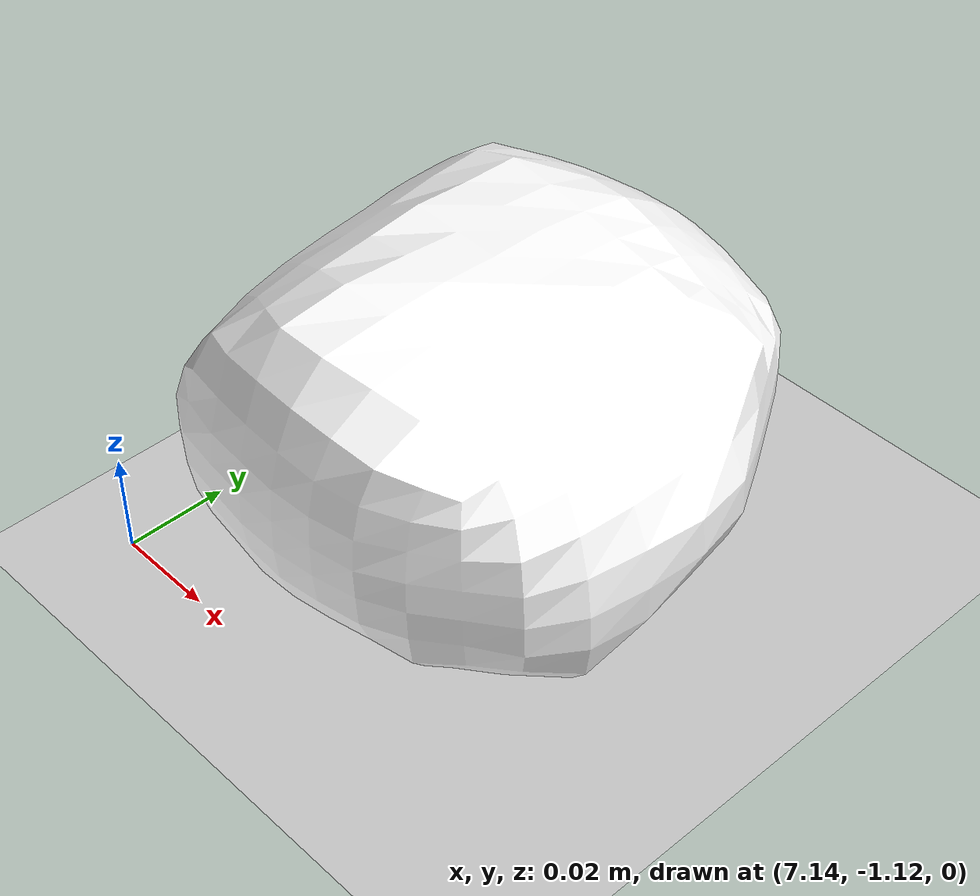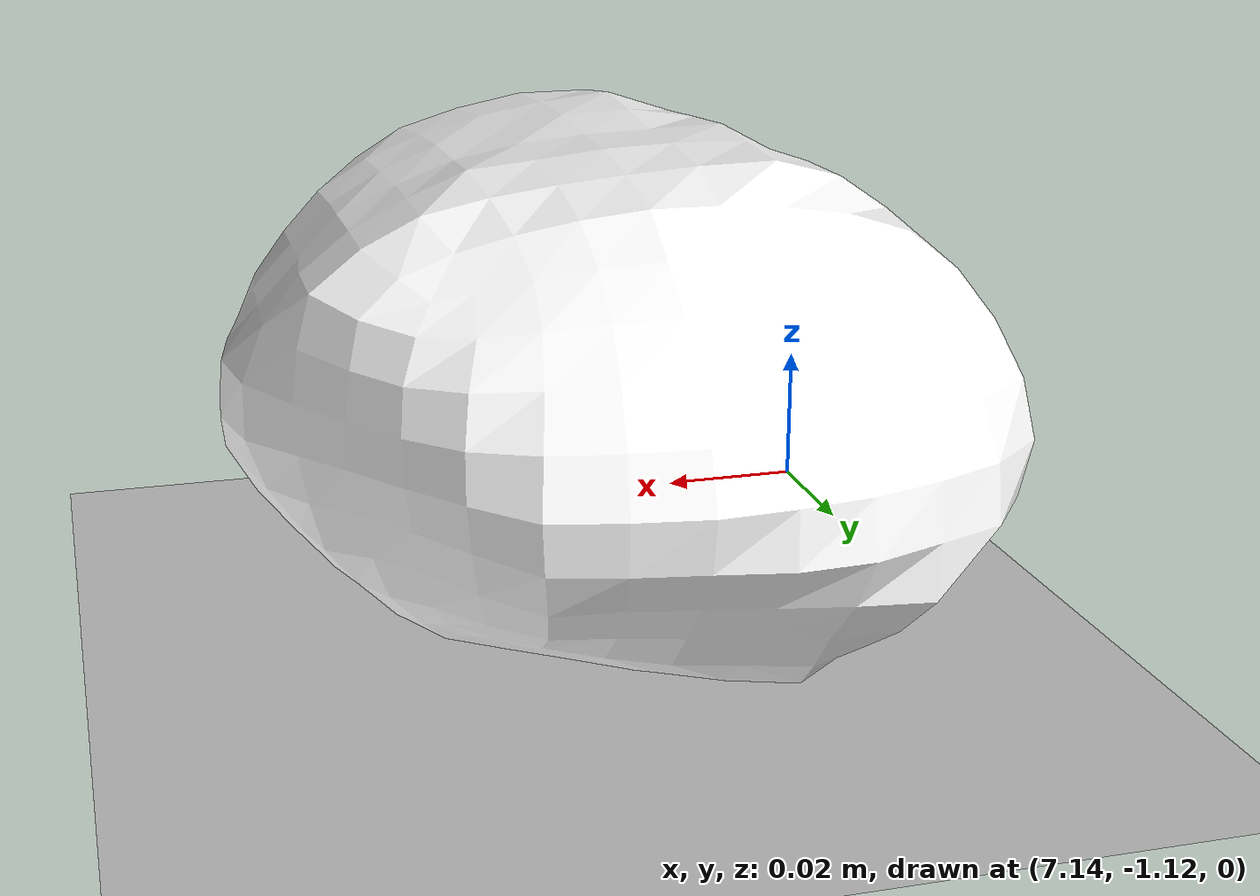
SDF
<sdf version="1.7">
 <world name="default">
  <model name="ground_plane">
   <static>1</static>
   <link name="link">
    <collision name="collision">
     <geometry><plane><normal>0 0 1</normal><size>100 100</size></plane></geometry>
     <surface><friction><ode><mu>100</mu><mu2>50</mu2></ode></friction></surface>
    </collision>
    <visual name="visual">
     <cast_shadows>0</cast_shadows>
     <geometry><plane><normal>0 0 1</normal><size>100 100</size></plane></geometry>
     <material>
      <script><uri>file://media/materials/scripts/gazebo.material</uri><name>Gazebo/Grey</name></script>
     </material>
    </visual>
   </link>
  </model>
  <model name="my_rock02_clone_5_clone_3">
   <link name="link">
    <inertial>
     <mass>0.3</mass>
     <inertia><ixx>1</ixx><ixy>0</ixy><ixz>0</ixz><iyy>1</iyy><iyz>0</iyz><izz>1</izz></inertia>
    </inertial>
    <velocity_decay><linear>0</linear><angular>0</angular></velocity_decay>
    <visual name="visual">
     <pose>0 0 0.031 0 -0 0</pose>
     <geometry><mesh><uri>model://my_rock02/meshes/model.dae</uri><scale>0.06 0.06 0.06</scale></mesh></geometry>
     <material>
      <script>
       <uri>model://my_rock02/materials/scripts</uri>
       <uri>model://my_rock02/materials/textures</uri>
       <name>myrock/Diffuse</name>
      </script>
      <shader type="pixel"><normal_map>__default__</normal_map></shader>
      <ambient>1 1 1 1</ambient>
      <diffuse>1 1 1 1</diffuse>
      <specular>0 0 0 1</specular>
      <emissive>0 0 0 1</emissive>
     </material>
    </visual>
    <collision name="collision">
     <pose>-0 0 0.03 0 -0 0</pose>
     <geometry>
      <mesh>
       <uri>/home/roboworks/CIRE2022/rocks_models/my_rock02/meshes/model.dae</uri>
       <scale>0.06 0.06 0.06</scale>
      </mesh>
     </geometry>
     <surface>
      <friction>
       <ode><mu>1</mu><mu2>1</mu2><fdir1>0 0 0</fdir1><slip1>0</slip1><slip2>0</slip2></ode>
       <torsional>
        <coefficient>1</coefficient>
        <patch_radius>0</patch_radius>
        <surface_radius>0</surface_radius>
        <use_patch_radius>1</use_patch_radius>
        <ode><slip>0</slip></ode>
       </torsional>
      </friction>
      <bounce><restitution_coefficient>1e-05</restitution_coefficient><threshold>0</threshold></bounce>
      <contact>
       <collide_without_contact>0</collide_without_contact>
       <collide_without_contact_bitmask>1</collide_without_contact_bitmask>
       <collide_bitmask>1</collide_bitmask>
       <ode>
        <soft_cfm>0</soft_cfm>
        <soft_erp>0.2</soft_erp>
        <kp>1e+13</kp>
        <kd>1</kd>
        <max_vel>10</max_vel>
        <min_depth>0</min_depth>
       </ode>
       <bullet>
        <split_impulse>1</split_impulse>
        <split_impulse_penetration_threshold>-0.01</split_impulse_penetration_threshold>
        <soft_cfm>0</soft_cfm>
        <soft_erp>0.2</soft_erp>
        <kp>1e+13</kp>
        <kd>1</kd>
       </bullet>
      </contact>
     </surface>
    </collision>
   </link>
   <static>0</static>
   <pose>7.18717 -1.06888 0.003366 0.028396 0.008523 -0.001201</pose>
  </model>
 </world>
</sdf>
